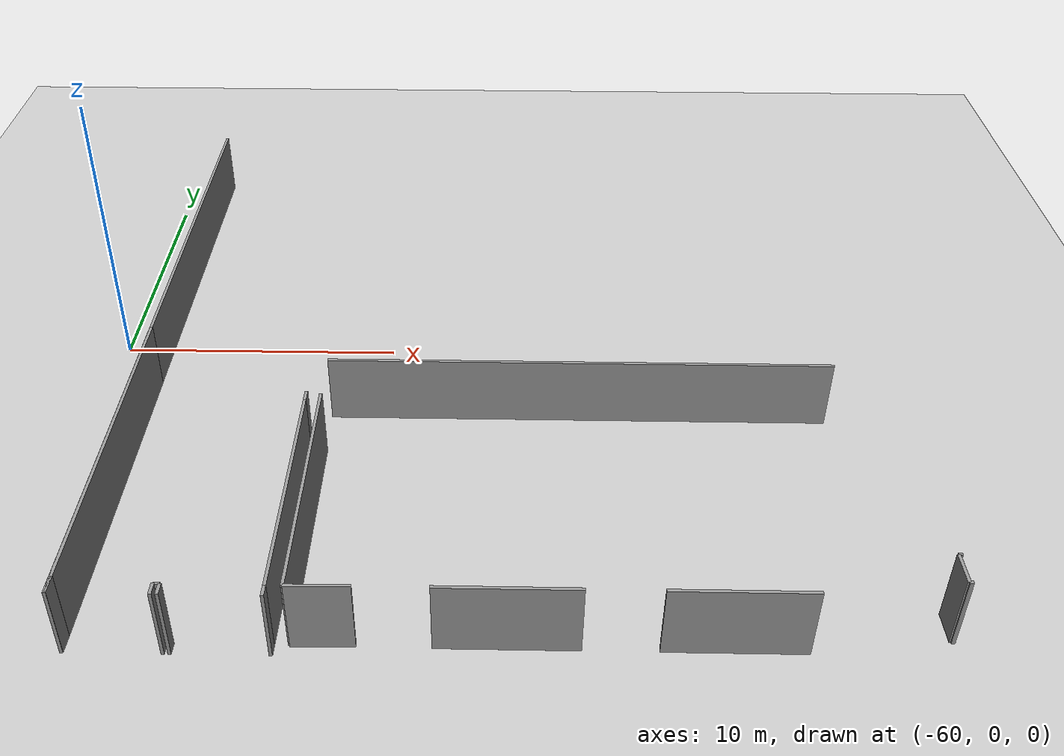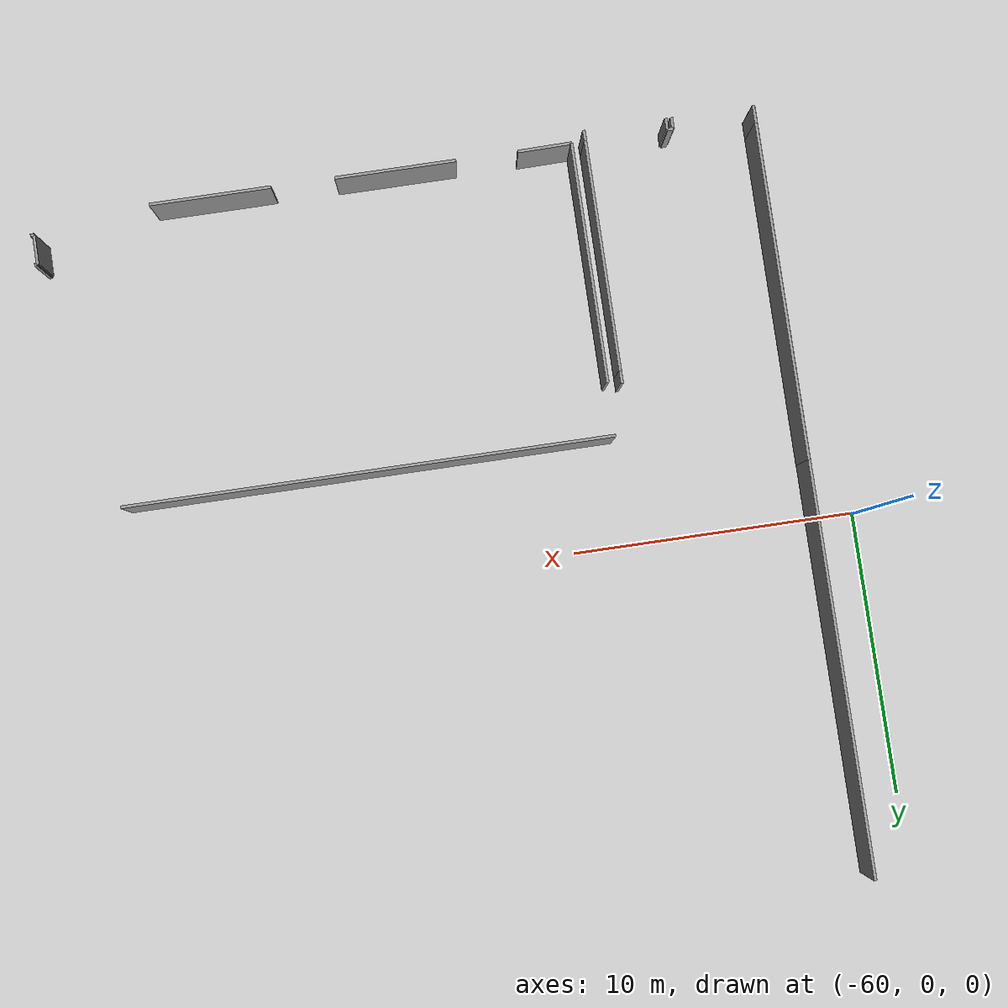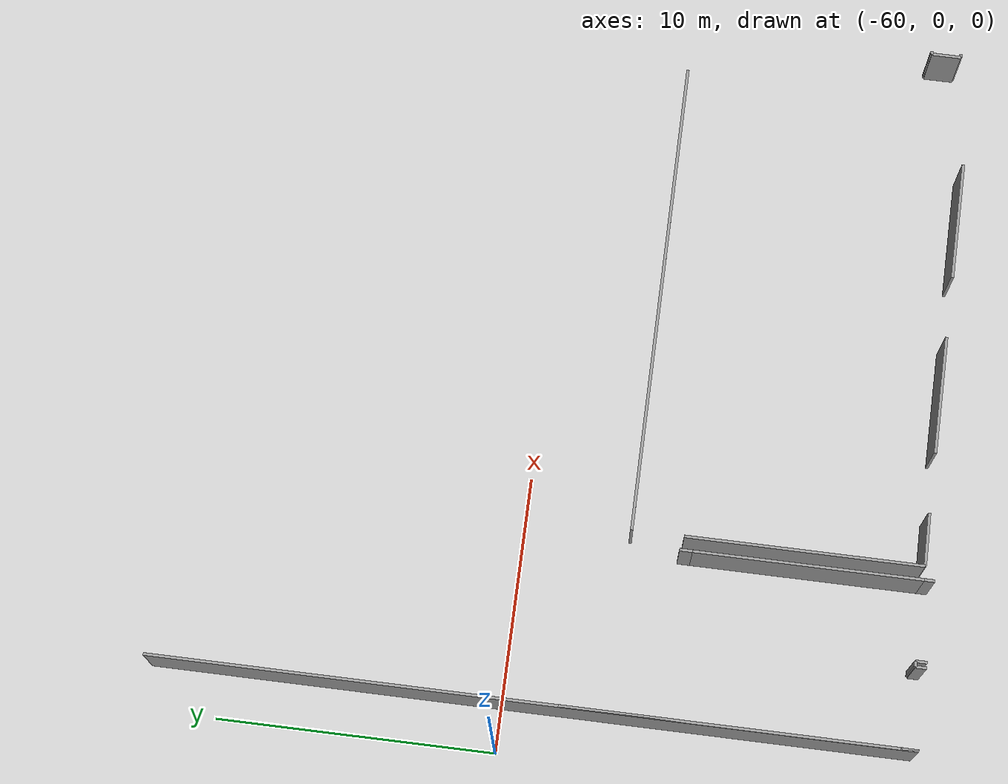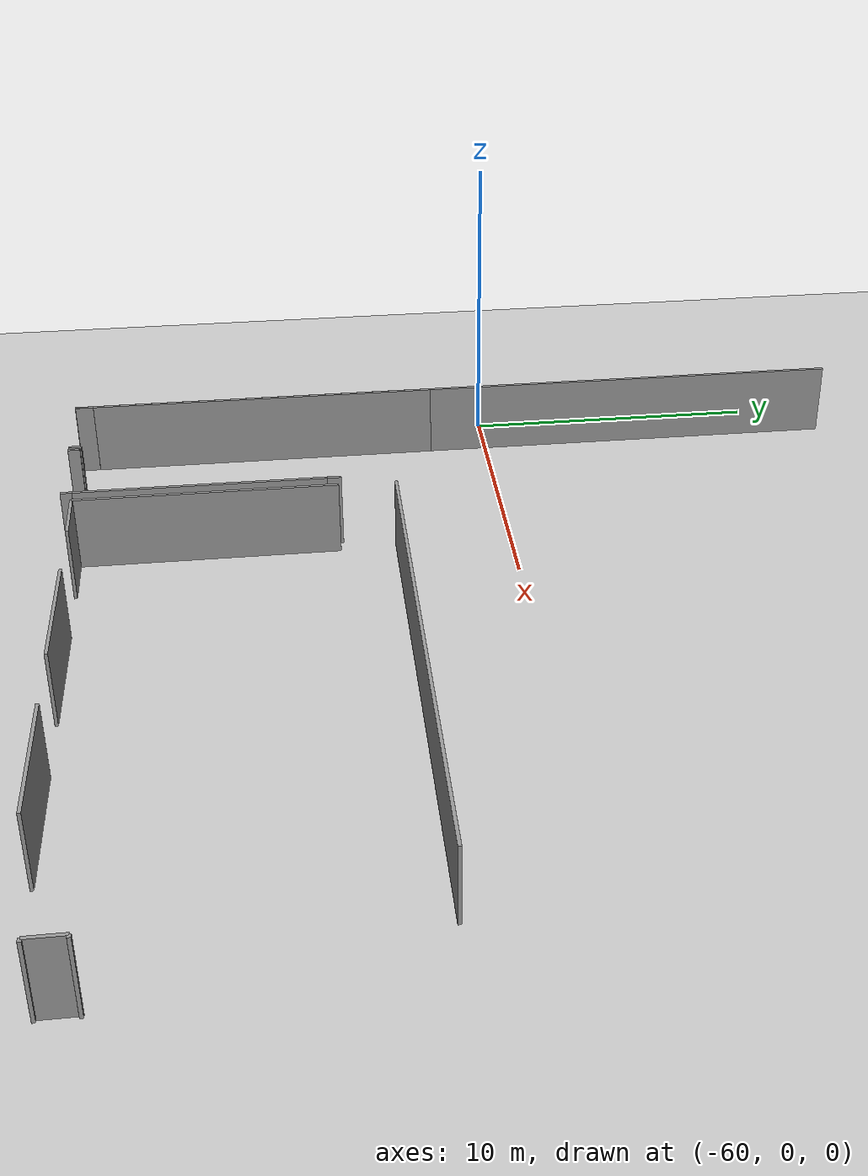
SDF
<sdf version="1.6">
 <world name="default">
  <model name="ground_plane">
   <static>1</static>
   <link name="link">
    <collision name="collision">
     <geometry><plane><normal>0 0 1</normal><size>100 100</size></plane></geometry>
     <surface><friction><ode><mu>100</mu><mu2>50</mu2></ode></friction></surface>
    </collision>
    <visual name="visual">
     <cast_shadows>0</cast_shadows>
     <geometry><plane><normal>0 0 1</normal><size>100 100</size></plane></geometry>
     <material>
      <script><uri>file://media/materials/scripts/gazebo.material</uri><name>Gazebo/Grey</name></script>
     </material>
    </visual>
   </link>
  </model>
  <model name="0510040941_A-40">
   <static>1</static>
   <link name="Wall_11">
    <collision name="Wall_11_Collision">
     <geometry><box><size>11.9235476527 0.1 2.5</size></box></geometry>
     <pose>5.96177382636 0 1.25 0 0 0</pose>
    </collision>
    <visual name="Wall_11_Visual">
     <pose>5.96177382636 0 1.25 0 0 0</pose>
     <geometry><box><size>11.9235476527 0.1 2.5</size></box></geometry>
     <material>
      <script><uri>file://media/materials/scripts/gazebo.material</uri><name>Gazebo/Grey</name></script>
      <ambient>1 1 1 1</ambient>
     </material>
    </visual>
    <pose>0.00596094943974 -26.4680106282 0 0 0 1.57079632679</pose>
   </link>
   <link name="Wall_19">
    <collision name="Wall_19_Collision">
     <geometry><box><size>0.456837018764 0.1 2.5</size></box></geometry>
     <pose>0.228418509382 0 1.25 0 0 0</pose>
    </collision>
    <visual name="Wall_19_Visual">
     <pose>0.228418509382 0 1.25 0 0 0</pose>
     <geometry><box><size>0.456837018764 0.1 2.5</size></box></geometry>
     <material>
      <script><uri>file://media/materials/scripts/gazebo.material</uri><name>Gazebo/Grey</name></script>
      <ambient>1 1 1 1</ambient>
     </material>
    </visual>
    <pose>5.99544684926 -18.0831108546 0 0 0 -1.57079632679</pose>
   </link>
   <link name="Wall_20">
    <collision name="Wall_20_Collision">
     <geometry><box><size>8.16523244532 0.1 2.5</size></box></geometry>
     <pose>4.08261622266 0 1.25 0 0 0</pose>
    </collision>
    <visual name="Wall_20_Visual">
     <pose>4.08261622266 0 1.25 0 0 0</pose>
     <geometry><box><size>8.16523244532 0.1 2.5</size></box></geometry>
     <material>
      <script><uri>file://media/materials/scripts/gazebo.material</uri><name>Gazebo/Grey</name></script>
      <ambient>1 1 1 1</ambient>
     </material>
    </visual>
    <pose>5.99544684926 -18.5399478734 0 0 0 -1.57079632679</pose>
   </link>
   <link name="Wall_21">
    <collision name="Wall_21_Collision">
     <geometry><box><size>0.37528615728 0.1 2.5</size></box></geometry>
     <pose>0.18764307864 0 1.25 0 0 0</pose>
    </collision>
    <visual name="Wall_21_Visual">
     <pose>0.18764307864 0 1.25 0 0 0</pose>
     <geometry><box><size>0.37528615728 0.1 2.5</size></box></geometry>
     <material>
      <script><uri>file://media/materials/scripts/gazebo.material</uri><name>Gazebo/Grey</name></script>
      <ambient>1 1 1 1</ambient>
     </material>
    </visual>
    <pose>5.99544684926 -26.7051803187 0 0 0 -1.57079632679</pose>
   </link>
   <link name="Wall_22">
    <collision name="Wall_22_Collision">
     <geometry><box><size>0.399003126328 0.1 2.5</size></box></geometry>
     <pose>0.199501563164 0 1.25 0 0 0</pose>
    </collision>
    <visual name="Wall_22_Visual">
     <pose>0.199501563164 0 1.25 0 0 0</pose>
     <geometry><box><size>0.399003126328 0.1 2.5</size></box></geometry>
     <material>
      <script><uri>file://media/materials/scripts/gazebo.material</uri><name>Gazebo/Grey</name></script>
      <ambient>1 1 1 1</ambient>
     </material>
    </visual>
    <pose>3.09918639382 -27.080466476 0 0 0 1.57079632679</pose>
   </link>
   <link name="Wall_23">
    <collision name="Wall_23_Collision">
     <geometry><box><size>0.195443044396 0.1 2.5</size></box></geometry>
     <pose>0.0977215221982 0 1.25 0 0 0</pose>
    </collision>
    <visual name="Wall_23_Visual">
     <pose>0.0977215221982 0 1.25 0 0 0</pose>
     <geometry><box><size>0.195443044396 0.1 2.5</size></box></geometry>
     <material>
      <script><uri>file://media/materials/scripts/gazebo.material</uri><name>Gazebo/Grey</name></script>
      <ambient>1 1 1 1</ambient>
     </material>
    </visual>
    <pose>3.09918639382 -26.6814633497 0 0 0 3.14159265359</pose>
   </link>
   <link name="Wall_24">
    <collision name="Wall_24_Collision">
     <geometry><box><size>0.400525070866 0.1 2.5</size></box></geometry>
     <pose>0.200262535433 0 1.25 0 0 0</pose>
    </collision>
    <visual name="Wall_24_Visual">
     <pose>0.200262535433 0 1.25 0 0 0</pose>
     <geometry><box><size>0.400525070866 0.1 2.5</size></box></geometry>
     <material>
      <script><uri>file://media/materials/scripts/gazebo.material</uri><name>Gazebo/Grey</name></script>
      <ambient>1 1 1 1</ambient>
     </material>
    </visual>
    <pose>2.90374334942 -26.6814633497 0 0 0 -1.57079632679</pose>
   </link>
   <link name="Wall_25">
    <collision name="Wall_25_Collision">
     <geometry><box><size>0.614006728259 0.1 2.5</size></box></geometry>
     <pose>0.307003364129 0 1.25 0 0 0</pose>
    </collision>
    <visual name="Wall_25_Visual">
     <pose>0.307003364129 0 1.25 0 0 0</pose>
     <geometry><box><size>0.614006728259 0.1 2.5</size></box></geometry>
     <material>
      <script><uri>file://media/materials/scripts/gazebo.material</uri><name>Gazebo/Grey</name></script>
      <ambient>1 1 1 1</ambient>
     </material>
    </visual>
    <pose>0.0 -27.0819884205 0 0 0 1.56108789396</pose>
   </link>
   <link name="Wall_26">
    <collision name="Wall_26_Collision">
     <geometry><box><size>8.49384563678 0.1 2.5</size></box></geometry>
     <pose>4.24692281839 0 1.25 0 0 0</pose>
    </collision>
    <visual name="Wall_26_Visual">
     <pose>4.24692281839 0 1.25 0 0 0</pose>
     <geometry><box><size>8.49384563678 0.1 2.5</size></box></geometry>
     <material>
      <script><uri>file://media/materials/scripts/gazebo.material</uri><name>Gazebo/Grey</name></script>
      <ambient>1 1 1 1</ambient>
     </material>
    </visual>
    <pose>6.48589347657 -26.6884389288 0 0 0 1.57079632679</pose>
   </link>
   <link name="Wall_27">
    <collision name="Wall_27_Collision">
     <geometry><box><size>17.2592315448 0.1 2.5</size></box></geometry>
     <pose>8.62961577242 0 1.25 0 0 0</pose>
    </collision>
    <visual name="Wall_27_Visual">
     <pose>8.62961577242 0 1.25 0 0 0</pose>
     <geometry><box><size>17.2592315448 0.1 2.5</size></box></geometry>
     <material>
      <script><uri>file://media/materials/scripts/gazebo.material</uri><name>Gazebo/Grey</name></script>
      <ambient>1 1 1 1</ambient>
     </material>
    </visual>
    <pose>6.48589347657 -16.3312258629 0 0 0 0.0</pose>
   </link>
   <link name="Wall_30">
    <collision name="Wall_30_Collision">
     <geometry><box><size>0.111482437394 0.1 2.5</size></box></geometry>
     <pose>0.0557412186971 0 1.25 0 0 0</pose>
    </collision>
    <visual name="Wall_30_Visual">
     <pose>0.0557412186971 0 1.25 0 0 0</pose>
     <geometry><box><size>0.111482437394 0.1 2.5</size></box></geometry>
     <material>
      <script><uri>file://media/materials/scripts/gazebo.material</uri><name>Gazebo/Grey</name></script>
      <ambient>1 1 1 1</ambient>
     </material>
    </visual>
    <pose>25.5960632368 -25.1237531152 0 0 0 3.14159265359</pose>
   </link>
   <link name="Wall_31">
    <collision name="Wall_31_Collision">
     <geometry><box><size>1.05927339831 0.1 2.5</size></box></geometry>
     <pose>0.529636699156 0 1.25 0 0 0</pose>
    </collision>
    <visual name="Wall_31_Visual">
     <pose>0.529636699156 0 1.25 0 0 0</pose>
     <geometry><box><size>1.05927339831 0.1 2.5</size></box></geometry>
     <material>
      <script><uri>file://media/materials/scripts/gazebo.material</uri><name>Gazebo/Grey</name></script>
      <ambient>1 1 1 1</ambient>
     </material>
    </visual>
    <pose>25.4845807994 -25.1237531152 0 0 0 -1.57079632679</pose>
   </link>
   <link name="Wall_32">
    <collision name="Wall_32_Collision">
     <geometry><box><size>0.119726303641 0.1 2.5</size></box></geometry>
     <pose>0.0598631518203 0 1.25 0 0 0</pose>
    </collision>
    <visual name="Wall_32_Visual">
     <pose>0.0598631518203 0 1.25 0 0 0</pose>
     <geometry><box><size>0.119726303641 0.1 2.5</size></box></geometry>
     <material>
      <script><uri>file://media/materials/scripts/gazebo.material</uri><name>Gazebo/Grey</name></script>
      <ambient>1 1 1 1</ambient>
     </material>
    </visual>
    <pose>25.4845807994 -26.1830265135 0 0 0 0.0</pose>
   </link>
   <link name="Wall_35">
    <collision name="Wall_35_Collision">
     <geometry><box><size>4.29327871243 0.1 2.5</size></box></geometry>
     <pose>2.14663935622 0 1.25 0 0 0</pose>
    </collision>
    <visual name="Wall_35_Visual">
     <pose>2.14663935622 0 1.25 0 0 0</pose>
     <geometry><box><size>4.29327871243 0.1 2.5</size></box></geometry>
     <material>
      <script><uri>file://media/materials/scripts/gazebo.material</uri><name>Gazebo/Grey</name></script>
      <ambient>1 1 1 1</ambient>
     </material>
    </visual>
    <pose>21.3733012879 -26.6616780707 0 0 0 3.14159265359</pose>
   </link>
   <link name="Wall_36">
    <collision name="Wall_36_Collision">
     <geometry><box><size>4.28465436005 0.1 2.5</size></box></geometry>
     <pose>2.14232718003 0 1.25 0 0 0</pose>
    </collision>
    <visual name="Wall_36_Visual">
     <pose>2.14232718003 0 1.25 0 0 0</pose>
     <geometry><box><size>4.28465436005 0.1 2.5</size></box></geometry>
     <material>
      <script><uri>file://media/materials/scripts/gazebo.material</uri><name>Gazebo/Grey</name></script>
      <ambient>1 1 1 1</ambient>
     </material>
    </visual>
    <pose>14.8501201702 -26.6616780707 0 0 0 3.14159265359</pose>
   </link>
   <link name="Wall_37">
    <collision name="Wall_37_Collision">
     <geometry><box><size>1.90299932949 0.1 2.5</size></box></geometry>
     <pose>0.951499664743 0 1.25 0 0 0</pose>
    </collision>
    <visual name="Wall_37_Visual">
     <pose>0.951499664743 0 1.25 0 0 0</pose>
     <geometry><box><size>1.90299932949 0.1 2.5</size></box></geometry>
     <material>
      <script><uri>file://media/materials/scripts/gazebo.material</uri><name>Gazebo/Grey</name></script>
      <ambient>1 1 1 1</ambient>
     </material>
    </visual>
    <pose>8.38870463496 -26.6616780707 0 0 0 -3.12752972682</pose>
   </link>
   <link name="Wall_346">
    <collision name="Wall_346_Collision">
     <geometry><box><size>27.0894713145 0.1 2.5</size></box></geometry>
     <pose>13.5447356573 0 1.25 0 0 0</pose>
    </collision>
    <visual name="Wall_346_Visual">
     <pose>13.5447356573 0 1.25 0 0 0</pose>
     <geometry><box><size>27.0894713145 0.1 2.5</size></box></geometry>
     <material>
      <script><uri>file://media/materials/scripts/gazebo.material</uri><name>Gazebo/Grey</name></script>
      <ambient>1 1 1 1</ambient>
     </material>
    </visual>
    <pose>0.0 -27.0894713145 0 0 0 1.57079632679</pose>
   </link>
   <pose>-58.35 12.5394713145 0 0 0 0</pose>
  </model>
 </world>
</sdf>
